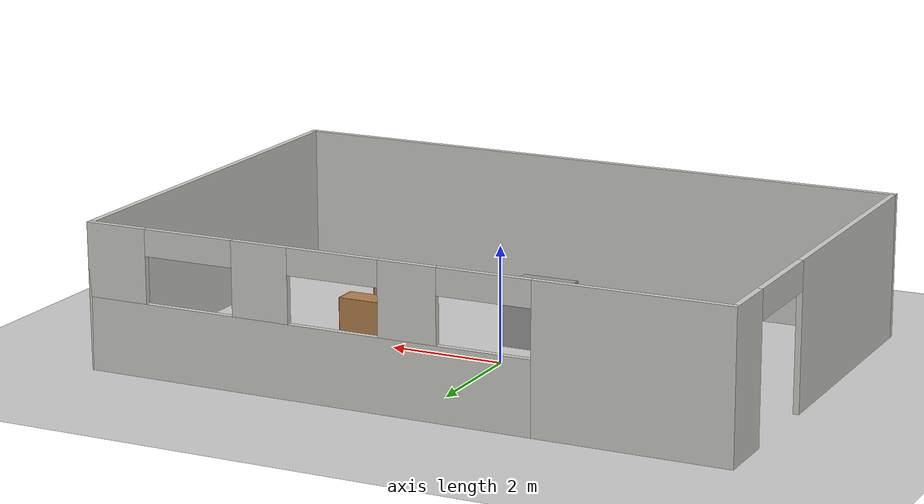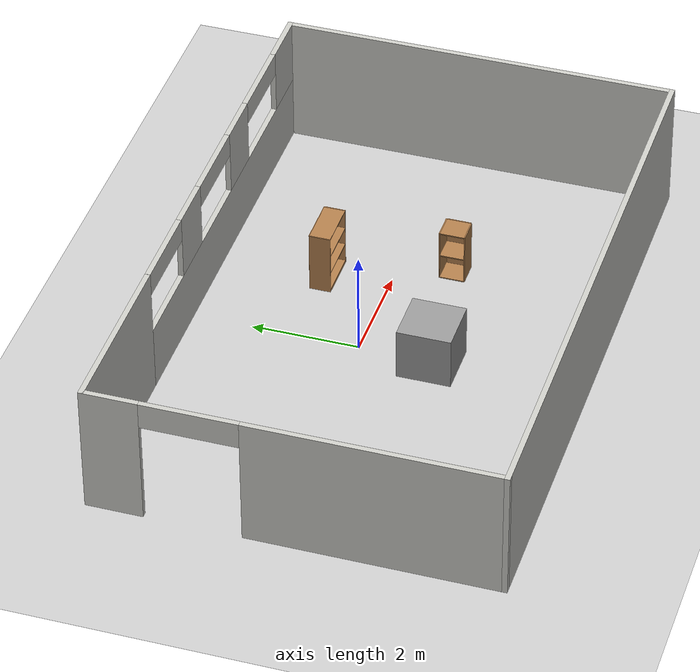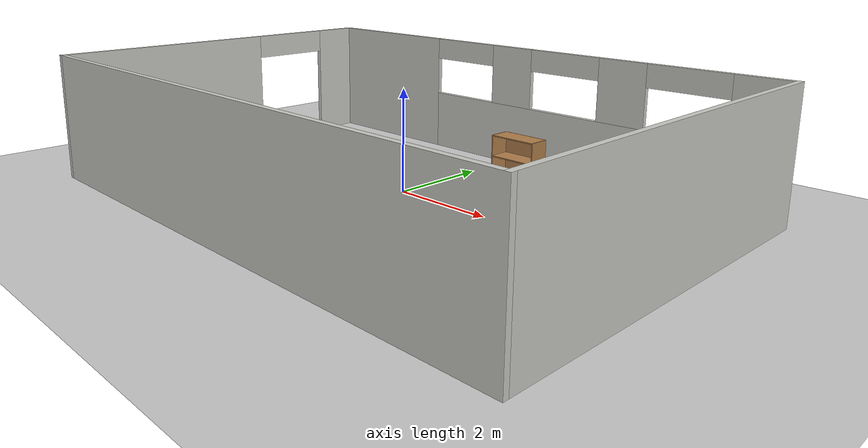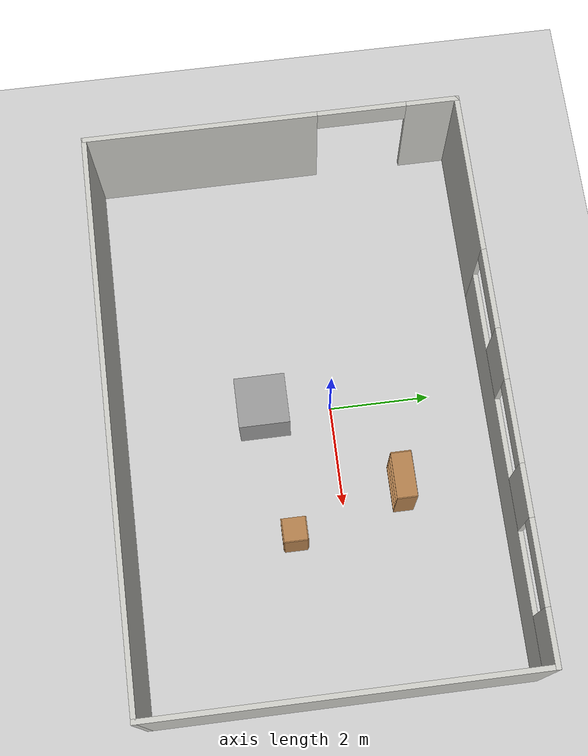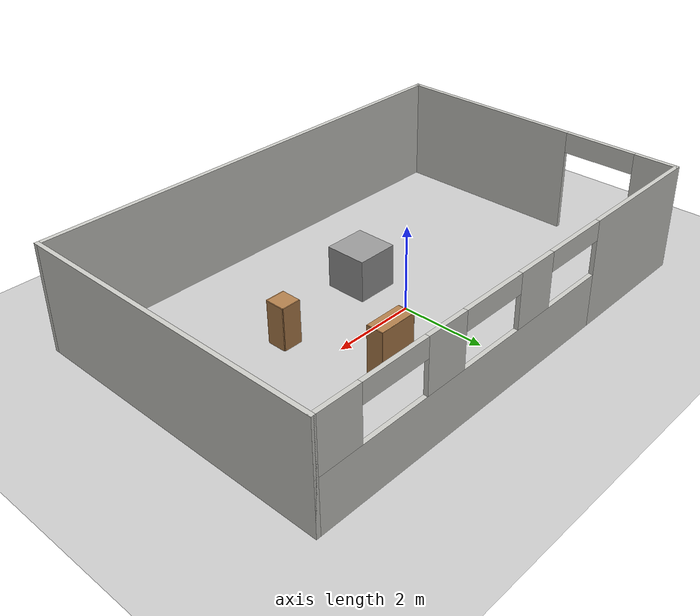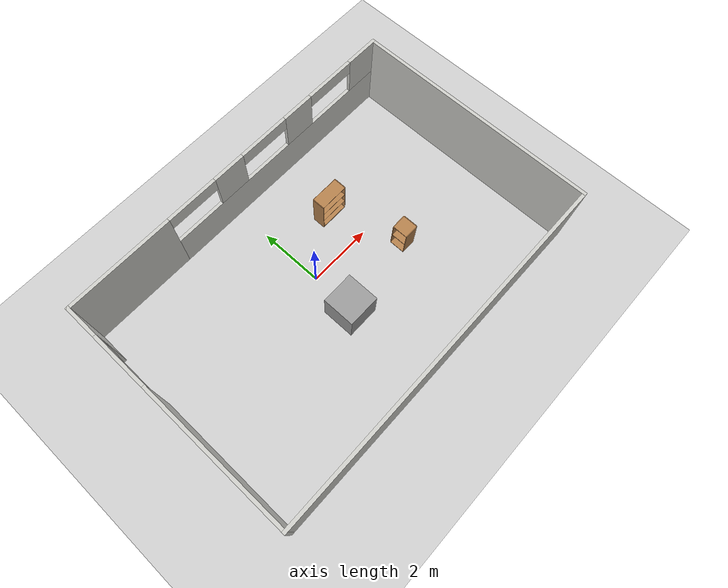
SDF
<sdf version="1.6">
 <world name="default">
  <light name="sun" type="directional">
   <pose>0 0 10 0 -0 0</pose>
   <diffuse>0.8 0.8 0.8 1</diffuse>
   <specular>0.2 0.2 0.2 1</specular>
   <attenuation>
    <range>1000</range>
    <constant>0.9</constant>
    <linear>0.01</linear>
    <quadratic>0.001</quadratic>
   </attenuation>
   <direction>-0.5 0.1 -0.9</direction>
  </light>
  <model name="ground_plane">
   <static>1</static>
   <link name="link">
    <collision name="collision">
     <geometry><plane><normal>0 0 1</normal><size>100 100</size></plane></geometry>
     <surface><friction><ode><mu>100</mu><mu2>50</mu2></ode></friction></surface>
    </collision>
    <visual name="visual">
     <cast_shadows>0</cast_shadows>
     <geometry><plane><normal>0 0 1</normal><size>100 100</size></plane></geometry>
     <material>
      <script><uri>file://media/materials/scripts/gazebo.material</uri><name>Gazebo/Grey</name></script>
     </material>
    </visual>
   </link>
  </model>
  <gravity>0 0 -9.8</gravity>
  <magnetic_field>6e-06 2.3e-05 -4.2e-05</magnetic_field>
  <atmosphere type="adiabatic"/>
  <physics name="default_physics" default="0" type="ode">
   <max_step_size>0.001</max_step_size>
   <real_time_factor>1</real_time_factor>
   <real_time_update_rate>1000</real_time_update_rate>
  </physics>
  <scene><ambient>0.4 0.4 0.4 1</ambient><background>0.7 0.7 0.7 1</background><shadows>1</shadows></scene>
  <spherical_coordinates>
   <surface_model>EARTH_WGS84</surface_model>
   <latitude_deg>0</latitude_deg>
   <longitude_deg>0</longitude_deg>
   <elevation>0</elevation>
   <heading_deg>0</heading_deg>
  </spherical_coordinates>
  <model name="unit_box">
   <pose>-0.05608 -1.35844 0.499995 -1e-05 -0 -0</pose>
   <link name="link">
    <inertial>
     <mass>1</mass>
     <inertia>
      <ixx>0.166667</ixx>
      <ixy>0</ixy>
      <ixz>0</ixz>
      <iyy>0.166667</iyy>
      <iyz>0</iyz>
      <izz>0.166667</izz>
     </inertia>
    </inertial>
    <collision name="collision"><geometry><box><size>1 1 1</size></box></geometry></collision>
    <visual name="visual">
     <geometry><box><size>1 1 1</size></box></geometry>
     <material>
      <script><name>Gazebo/Grey</name><uri>file://media/materials/scripts/gazebo.material</uri></script>
     </material>
    </visual>
   </link>
  </model>
  <model name="bookshelf">
   <static>1</static>
   <link name="link">
    <inertial><mass>1</mass></inertial>
    <collision name="back">
     <pose>0 0.005 0.6 0 -0 0</pose>
     <geometry><box><size>0.9 0.01 1.2</size></box></geometry>
    </collision>
    <visual name="visual1">
     <pose>0 0.005 0.6 0 -0 0</pose>
     <geometry><box><size>0.9 0.01 1.2</size></box></geometry>
     <material>
      <script><uri>file://media/materials/scripts/gazebo.material</uri><name>Gazebo/Wood</name></script>
     </material>
    </visual>
    <collision name="left_side">
     <pose>0.45 -0.195 0.6 0 -0 0</pose>
     <geometry><box><size>0.02 0.4 1.2</size></box></geometry>
    </collision>
    <visual name="visual2">
     <pose>0.45 -0.195 0.6 0 -0 0</pose>
     <geometry><box><size>0.02 0.4 1.2</size></box></geometry>
     <material>
      <script><uri>file://media/materials/scripts/gazebo.material</uri><name>Gazebo/Wood</name></script>
     </material>
    </visual>
    <collision name="right_side">
     <pose>-0.45 -0.195 0.6 0 -0 0</pose>
     <geometry><box><size>0.02 0.4 1.2</size></box></geometry>
    </collision>
    <visual name="visual3">
     <pose>-0.45 -0.195 0.6 0 -0 0</pose>
     <geometry><box><size>0.02 0.4 1.2</size></box></geometry>
     <material>
      <script><uri>file://media/materials/scripts/gazebo.material</uri><name>Gazebo/Wood</name></script>
     </material>
    </visual>
    <collision name="bottom">
     <pose>0 -0.195 0.03 0 -0 0</pose>
     <geometry><box><size>0.88 0.4 0.06</size></box></geometry>
    </collision>
    <visual name="visual4">
     <pose>0 -0.195 0.03 0 -0 0</pose>
     <geometry><box><size>0.88 0.4 0.06</size></box></geometry>
     <material>
      <script><uri>file://media/materials/scripts/gazebo.material</uri><name>Gazebo/Wood</name></script>
     </material>
    </visual>
    <collision name="top">
     <pose>0 -0.195 1.19 0 -0 0</pose>
     <geometry><box><size>0.88 0.4 0.02</size></box></geometry>
    </collision>
    <visual name="visual5">
     <pose>0 -0.195 1.19 0 -0 0</pose>
     <geometry><box><size>0.88 0.4 0.02</size></box></geometry>
     <material>
      <script><uri>file://media/materials/scripts/gazebo.material</uri><name>Gazebo/Wood</name></script>
     </material>
    </visual>
    <collision name="low_shelf">
     <pose>0 -0.195 0.43 0 -0 0</pose>
     <geometry><box><size>0.88 0.4 0.02</size></box></geometry>
    </collision>
    <visual name="visual6">
     <pose>0 -0.195 0.43 0 -0 0</pose>
     <geometry><box><size>0.88 0.4 0.02</size></box></geometry>
     <material>
      <script><uri>file://media/materials/scripts/gazebo.material</uri><name>Gazebo/Wood</name></script>
     </material>
    </visual>
    <collision name="high_shelf">
     <pose>0 -0.195 0.8 0 -0 0</pose>
     <geometry><box><size>0.88 0.4 0.02</size></box></geometry>
    </collision>
    <visual name="visual7">
     <pose>0 -0.195 0.8 0 -0 0</pose>
     <geometry><box><size>0.88 0.4 0.02</size></box></geometry>
     <material>
      <script><uri>file://media/materials/scripts/gazebo.material</uri><name>Gazebo/Wood</name></script>
     </material>
    </visual>
   </link>
   <pose>1.81034 1.35941 0 0 -0 0</pose>
  </model>
  <model name="cabinet">
   <static>1</static>
   <link name="cabinet_bottom_plate">
    <inertial>
     <pose>0 0 -1 0 -0 0</pose>
     <inertia><ixx>2.05</ixx><ixy>0</ixy><ixz>0</ixz><iyy>2.05</iyy><iyz>0</iyz><izz>2.05</izz></inertia>
     <mass>25</mass>
    </inertial>
    <collision name="cabinet_bottom_plate_geom">
     <pose>0 0 0.01 0 -0 0</pose>
     <geometry><box><size>0.45 0.45 0.02</size></box></geometry>
    </collision>
    <visual name="cabinet_bottom_plate_geom_visual">
     <pose>0 0 0.01 0 -0 0</pose>
     <geometry><box><size>0.45 0.45 0.02</size></box></geometry>
     <material>
      <script><uri>file://media/materials/scripts/gazebo.material</uri><name>Gazebo/Wood</name></script>
     </material>
    </visual>
    <collision name="cabinet_bottom_plate_geom_cabinet_back_plate">
     <pose>0.235 0 0.51 0 -0 0</pose>
     <geometry><box><size>0.02 0.45 1.02</size></box></geometry>
    </collision>
    <visual name="cabinet_bottom_plate_geom_cabinet_back_plate_visual">
     <pose>0.235 0 0.51 0 -0 0</pose>
     <geometry><box><size>0.02 0.45 1.02</size></box></geometry>
     <material>
      <script><uri>file://media/materials/scripts/gazebo.material</uri><name>Gazebo/Wood</name></script>
     </material>
    </visual>
    <collision name="cabinet_bottom_plate_geom_cabinet_left_plate">
     <pose>0 0.235 0.51 0 -0 0</pose>
     <geometry><box><size>0.45 0.02 1.02</size></box></geometry>
    </collision>
    <visual name="cabinet_bottom_plate_geom_cabinet_left_plate_visual">
     <pose>0 0.235 0.51 0 -0 0</pose>
     <geometry><box><size>0.45 0.02 1.02</size></box></geometry>
     <material>
      <script><uri>file://media/materials/scripts/gazebo.material</uri><name>Gazebo/Wood</name></script>
     </material>
    </visual>
    <collision name="cabinet_bottom_plate_geom_cabinet_middle_plate">
     <pose>0 0 0.51 0 -0 0</pose>
     <geometry><box><size>0.45 0.45 0.02</size></box></geometry>
    </collision>
    <visual name="cabinet_bottom_plate_geom_cabinet_middle_plate_visual">
     <pose>0 0 0.51 0 -0 0</pose>
     <geometry><box><size>0.45 0.45 0.02</size></box></geometry>
     <material>
      <script><uri>file://media/materials/scripts/gazebo.material</uri><name>Gazebo/Wood</name></script>
     </material>
    </visual>
    <collision name="cabinet_bottom_plate_geom_cabinet_right_plate">
     <pose>0 -0.235 0.51 0 -0 0</pose>
     <geometry><box><size>0.45 0.02 1.02</size></box></geometry>
    </collision>
    <visual name="cabinet_bottom_plate_geom_cabinet_right_plate_visual">
     <pose>0 -0.235 0.51 0 -0 0</pose>
     <geometry><box><size>0.45 0.02 1.02</size></box></geometry>
     <material>
      <script><uri>file://media/materials/scripts/gazebo.material</uri><name>Gazebo/Wood</name></script>
     </material>
    </visual>
    <collision name="cabinet_bottom_plate_geom_cabinet_top_plate">
     <pose>0 0 1.01 0 -0 0</pose>
     <geometry><box><size>0.45 0.45 0.02</size></box></geometry>
    </collision>
    <visual name="cabinet_bottom_plate_geom_cabinet_top_plate_visual">
     <pose>0 0 1.01 0 -0 0</pose>
     <geometry><box><size>0.45 0.45 0.02</size></box></geometry>
     <material>
      <script><uri>file://media/materials/scripts/gazebo.material</uri><name>Gazebo/Wood</name></script>
     </material>
    </visual>
   </link>
   <pose>2.55875 -1.03096 0 0 -0 0</pose>
  </model>
  <model name="lab">
   <pose>0.26253 -0.513014 0 0 -0 0</pose>
   <link name="Wall_23">
    <pose>0 3.675 0 0 -0 0</pose>
    <visual name="Wall_23_Visual_0">
     <pose>-3.95366 0 1.25 0 -0 0</pose>
     <geometry><box><size>3.29217 0.1 2.5</size></box></geometry>
     <material>
      <script><uri>file://media/materials/scripts/gazebo.material</uri><name>Gazebo/CeilingTiled</name></script>
      <ambient>0.760784 0.662745 0.627451 1</ambient>
     </material>
     <meta><layer>0</layer></meta>
    </visual>
    <collision name="Wall_23_Collision_0">
     <geometry><box><size>3.29217 0.1 2.5</size></box></geometry>
     <pose>-3.95366 0 1.25 0 -0 0</pose>
    </collision>
    <visual name="Wall_23_Visual_1">
     <pose>1.64609 0 0.625 0 -0 0</pose>
     <geometry><box><size>7.90733 0.1 1.25</size></box></geometry>
     <material>
      <script><uri>file://media/materials/scripts/gazebo.material</uri><name>Gazebo/CeilingTiled</name></script>
      <ambient>0.760784 0.662745 0.627451 1</ambient>
     </material>
     <meta><layer>0</layer></meta>
    </visual>
    <collision name="Wall_23_Collision_1">
     <geometry><box><size>7.90733 0.1 1.25</size></box></geometry>
     <pose>1.64609 0 0.625 0 -0 0</pose>
    </collision>
    <visual name="Wall_23_Visual_2">
     <pose>-0.203222 0 1.875 0 -0 0</pose>
     <geometry><box><size>1.00872 0.1 1.25</size></box></geometry>
     <material>
      <script><uri>file://media/materials/scripts/gazebo.material</uri><name>Gazebo/CeilingTiled</name></script>
      <ambient>0.760784 0.662745 0.627451 1</ambient>
     </material>
     <meta><layer>0</layer></meta>
    </visual>
    <collision name="Wall_23_Collision_2">
     <geometry><box><size>1.00872 0.1 1.25</size></box></geometry>
     <pose>-0.203222 0 1.875 0 -0 0</pose>
    </collision>
    <visual name="Wall_23_Visual_3">
     <pose>2.40557 0 1.875 0 -0 0</pose>
     <geometry><box><size>1.00886 0.1 1.25</size></box></geometry>
     <material>
      <script><uri>file://media/materials/scripts/gazebo.material</uri><name>Gazebo/CeilingTiled</name></script>
      <ambient>0.760784 0.662745 0.627451 1</ambient>
     </material>
     <meta><layer>0</layer></meta>
    </visual>
    <collision name="Wall_23_Collision_3">
     <geometry><box><size>1.00886 0.1 1.25</size></box></geometry>
     <pose>2.40557 0 1.875 0 -0 0</pose>
    </collision>
    <visual name="Wall_23_Visual_4">
     <pose>5.05488 0 1.875 0 -0 0</pose>
     <geometry><box><size>1.08975 0.1 1.25</size></box></geometry>
     <material>
      <script><uri>file://media/materials/scripts/gazebo.material</uri><name>Gazebo/CeilingTiled</name></script>
      <ambient>0.760784 0.662745 0.627451 1</ambient>
     </material>
     <meta><layer>0</layer></meta>
    </visual>
    <collision name="Wall_23_Collision_4">
     <geometry><box><size>1.08975 0.1 1.25</size></box></geometry>
     <pose>5.05488 0 1.875 0 -0 0</pose>
    </collision>
    <visual name="Wall_23_Visual_5">
     <pose>-1.50758 0 2.275 0 -0 0</pose>
     <geometry><box><size>1.6 0.1 0.45</size></box></geometry>
     <material>
      <script><uri>file://media/materials/scripts/gazebo.material</uri><name>Gazebo/CeilingTiled</name></script>
      <ambient>0.760784 0.662745 0.627451 1</ambient>
     </material>
     <meta><layer>0</layer></meta>
    </visual>
    <collision name="Wall_23_Collision_5">
     <geometry><box><size>1.6 0.1 0.45</size></box></geometry>
     <pose>-1.50758 0 2.275 0 -0 0</pose>
    </collision>
    <visual name="Wall_23_Visual_6">
     <pose>1.10114 0 2.275 0 -0 0</pose>
     <geometry><box><size>1.6 0.1 0.45</size></box></geometry>
     <material>
      <script><uri>file://media/materials/scripts/gazebo.material</uri><name>Gazebo/CeilingTiled</name></script>
      <ambient>0.760784 0.662745 0.627451 1</ambient>
     </material>
     <meta><layer>0</layer></meta>
    </visual>
    <collision name="Wall_23_Collision_6">
     <geometry><box><size>1.6 0.1 0.45</size></box></geometry>
     <pose>1.10114 0 2.275 0 -0 0</pose>
    </collision>
    <visual name="Wall_23_Visual_7">
     <pose>3.71 0 2.275 0 -0 0</pose>
     <geometry><box><size>1.6 0.1 0.45</size></box></geometry>
     <material>
      <script><uri>file://media/materials/scripts/gazebo.material</uri><name>Gazebo/CeilingTiled</name></script>
      <ambient>0.760784 0.662745 0.627451 1</ambient>
     </material>
     <meta><layer>0</layer></meta>
    </visual>
    <collision name="Wall_23_Collision_7">
     <geometry><box><size>1.6 0.1 0.45</size></box></geometry>
     <pose>3.71 0 2.275 0 -0 0</pose>
    </collision>
   </link>
   <link name="Wall_24">
    <collision name="Wall_24_Collision">
     <geometry><box><size>7.45 0.1 2.5</size></box></geometry>
     <pose>0 0 1.25 0 -0 0</pose>
    </collision>
    <visual name="Wall_24_Visual">
     <pose>0 0 1.25 0 -0 0</pose>
     <geometry><box><size>7.45 0.1 2.5</size></box></geometry>
     <material>
      <script><uri>file://media/materials/scripts/gazebo.material</uri><name>Gazebo/CeilingTiled</name></script>
      <ambient>0.760784 0.662745 0.627451 1</ambient>
     </material>
     <meta><layer>0</layer></meta>
    </visual>
    <pose>5.55 -0 0 0 -0 -1.5708</pose>
   </link>
   <link name="Wall_25">
    <collision name="Wall_25_Collision">
     <geometry><box><size>11.2005 0.1 2.5</size></box></geometry>
     <pose>0 0 1.25 0 -0 0</pose>
    </collision>
    <visual name="Wall_25_Visual">
     <pose>0 0 1.25 0 -0 0</pose>
     <geometry><box><size>11.2005 0.1 2.5</size></box></geometry>
     <material>
      <script><uri>file://media/materials/scripts/gazebo.material</uri><name>Gazebo/CeilingTiled</name></script>
      <ambient>0.760784 0.662745 0.627451 1</ambient>
     </material>
     <meta><layer>0</layer></meta>
    </visual>
    <pose>0 -3.675 0 0 -0 3.14159</pose>
   </link>
   <link name="Wall_26">
    <pose>-5.55 -0 0 0 -0 1.5708</pose>
    <visual name="Wall_26_Visual_0">
     <pose>-1.40863 0 1.25 0 -0 0</pose>
     <geometry><box><size>4.63275 0.1 2.5</size></box></geometry>
     <material>
      <script><uri>file://media/materials/scripts/gazebo.material</uri><name>Gazebo/CeilingTiled</name></script>
      <ambient>0.760784 0.662745 0.627451 1</ambient>
     </material>
     <meta><layer>0</layer></meta>
    </visual>
    <collision name="Wall_26_Collision_0">
     <geometry><box><size>4.63275 0.1 2.5</size></box></geometry>
     <pose>-1.40863 0 1.25 0 -0 0</pose>
    </collision>
    <visual name="Wall_26_Visual_1">
     <pose>3.19762 0 1.25 0 -0 0</pose>
     <geometry><box><size>1.05475 0.1 2.5</size></box></geometry>
     <material>
      <script><uri>file://media/materials/scripts/gazebo.material</uri><name>Gazebo/CeilingTiled</name></script>
      <ambient>0.760784 0.662745 0.627451 1</ambient>
     </material>
     <meta><layer>0</layer></meta>
    </visual>
    <collision name="Wall_26_Collision_1">
     <geometry><box><size>1.05475 0.1 2.5</size></box></geometry>
     <pose>3.19762 0 1.25 0 -0 0</pose>
    </collision>
    <visual name="Wall_26_Visual_2">
     <pose>1.789 0 2.25 0 -0 0</pose>
     <geometry><box><size>1.7625 0.1 0.5</size></box></geometry>
     <material>
      <script><uri>file://media/materials/scripts/gazebo.material</uri><name>Gazebo/CeilingTiled</name></script>
      <ambient>0.760784 0.662745 0.627451 1</ambient>
     </material>
     <meta><layer>0</layer></meta>
    </visual>
    <collision name="Wall_26_Collision_2">
     <geometry><box><size>1.7625 0.1 0.5</size></box></geometry>
     <pose>1.789 0 2.25 0 -0 0</pose>
    </collision>
   </link>
   <static>1</static>
  </model>
 </world>
</sdf>
